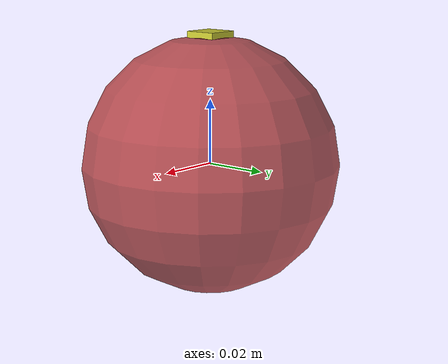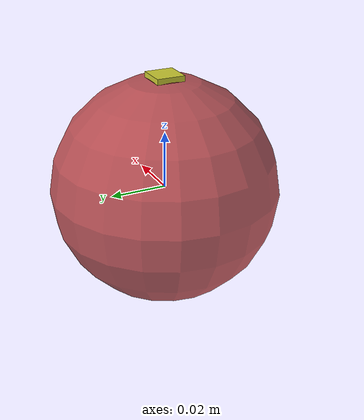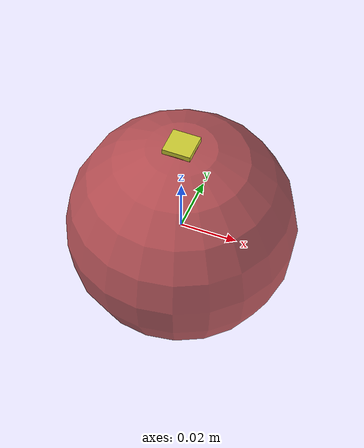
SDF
<?xml version="1.0"?>
<sdf version="1.7">
  <model name="sphere_r0.1m">
    <link name="sphere">
      <inertial>
        <mass>1.0</mass>
        <inertia>
          <ixx>0.001</ixx>
          <ixy>0</ixy>
          <ixz>0</ixz>
          <iyy>0.001</iyy>
          <iyz>0</iyz>
          <izz>0.001</izz>
        </inertia>
      </inertial>

      <visual name="visual">
        <geometry>
          <sphere>
            <radius>0.04</radius>
          </sphere>
        </geometry>
        <material>
          <diffuse>0.7 0.2 0.2 0.8</diffuse>
        </material>
      </visual>

      <visual name="visual_2">
        <pose> 0 0 0.04 0 0 0 </pose>
        <geometry>
          <box>
           <size>0.01 0.01 0.002 </size>
          </box>
        </geometry>
        <material>
          <diffuse>0.8 0.8 0.2 0.9</diffuse>
        </material>
      </visual>

      <collision name="collision">
        <geometry>
          <sphere>
            <radius>0.04</radius>
          </sphere>
        </geometry>
        <surface>
          <friction>
            <ode>
              <mu>1.0</mu>
              <mu2>1.0</mu2>
            </ode>
          </friction>
        </surface>
      </collision>
    </link>
  </model>
</sdf>
